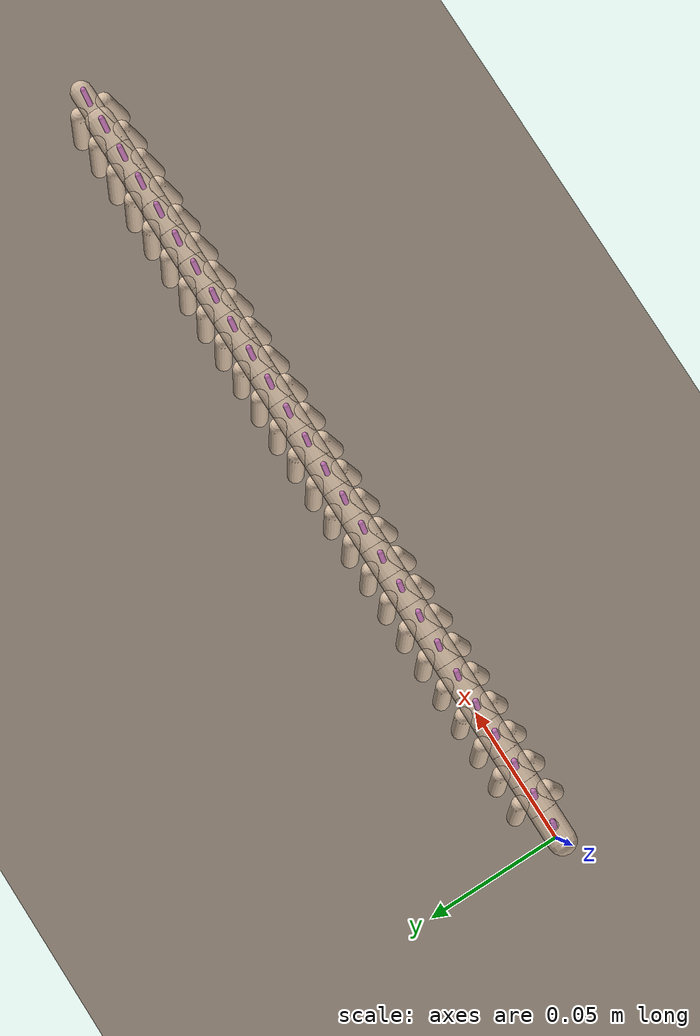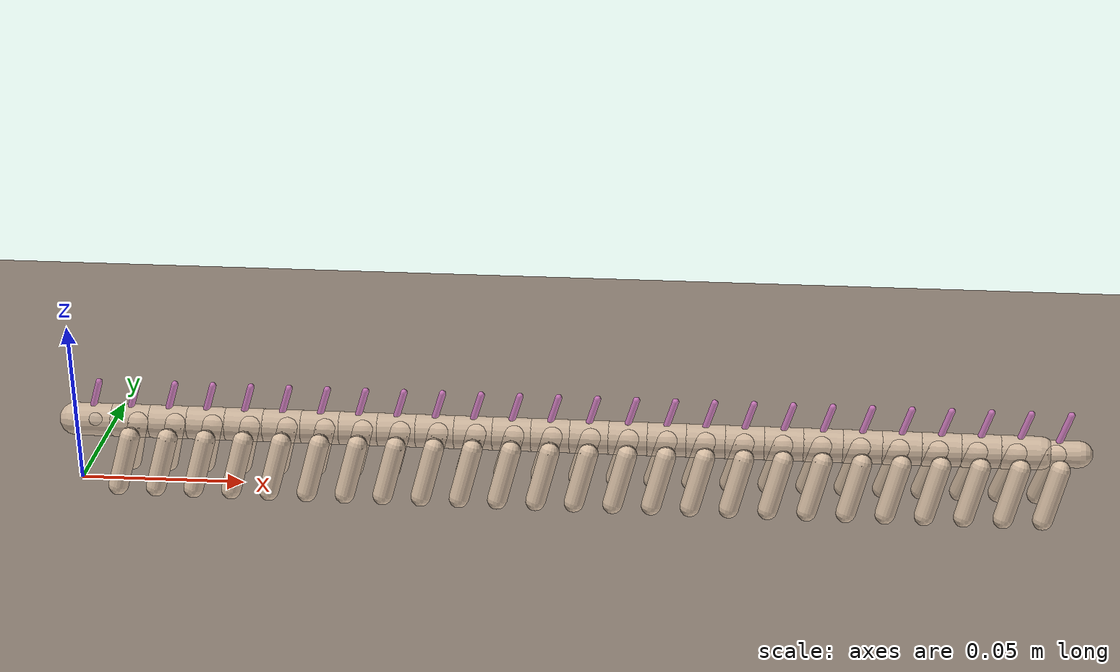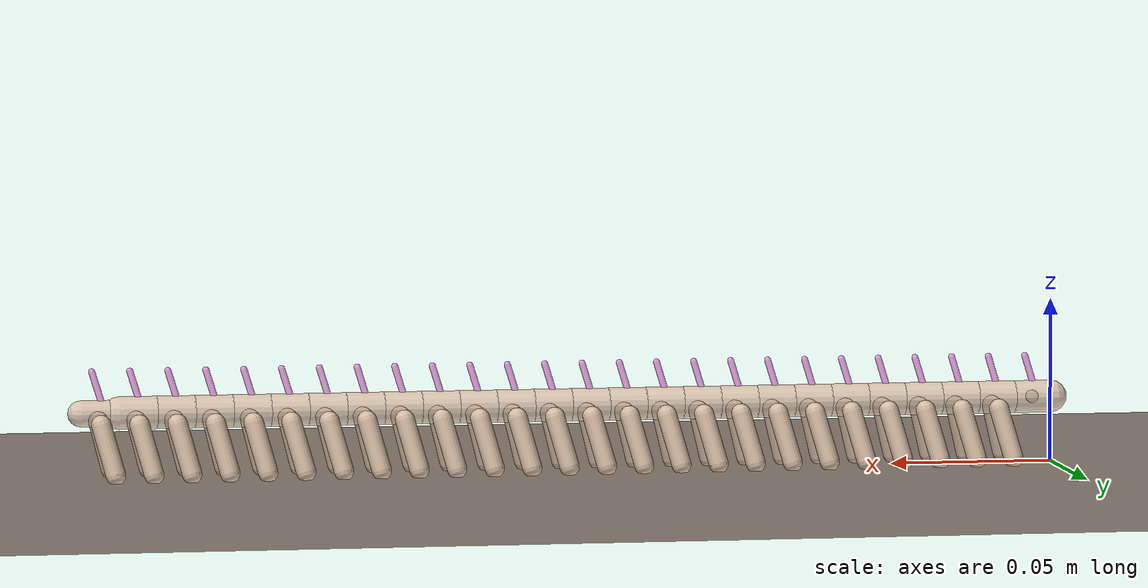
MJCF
<mujoco model="hallu_c">
  <compiler angle="radian" autolimits="true"/>

  <option timestep="0.002" gravity="0 0 -9.81" integrator="implicit">
    <flag contact="enable"/>
  </option>

  <size nconmax="800" njmax="1600"/>

  <default>
    <default class="body_joint">
      <joint type="hinge" damping="0.015" stiffness="0.08" limited="true"
             range="-0.15 0.15"/>
    </default>
    <!-- lobopod legs: pitch axis (0 1 0) so legs swing fore/aft -->
    <default class="leg_joint">
      <joint type="hinge" axis="0 1 0" damping="0.005" stiffness="0.02"
             limited="true" range="-0.3 0.8"/>
    </default>
    <default class="leg_geom">
      <geom type="capsule" size="0.003" rgba="0.85 0.75 0.65 0.9"
            density="1100" friction="1.5 0.01 0.01" condim="4"
            contype="1" conaffinity="1"/>
    </default>
    <default class="body_geom">
      <geom type="capsule" rgba="0.9 0.8 0.7 0.85"
            density="1100" friction="0.8 0.01 0.01" condim="3"
            contype="1" conaffinity="1"/>
    </default>
    <default class="spine_geom">
      <geom type="capsule" size="0.001 0.008" rgba="0.95 0.5 0.9 0.7"
            contype="0" conaffinity="0"/>
    </default>
    <default class="pneumatic">
      <general gainprm="0.009" biasprm="0 -0.009 0" dyntype="filter" dynprm="0.06"/>
    </default>
  </default>

  <asset>
    <texture name="ground" type="2d" builtin="checker" width="512" height="512"
             rgb1="0.6 0.55 0.5" rgb2="0.5 0.45 0.4"/>
    <material name="ground_mat" texture="ground" texrepeat="8 8"/>
  </asset>

  <worldbody>
    <geom name="floor" type="plane" size="2 2 0.01" material="ground_mat"
          contype="1" conaffinity="1" friction="1.0 0.005 0.001"/>

    <!-- HALLU-C: head + 25 leg-bearing segments, ~300mm total, 11.5mm per segment -->
    <body name="head" pos="0 0 0.020">
      <freejoint name="root"/>
      <geom class="body_geom" fromto="0 0 0 0.0115 0 0" size="0.005"/>
      <geom class="spine_geom" pos="0.00575 0 0.005" euler="0 0.3 0"/>
      <site name="imu" pos="0.00575 0 0" size="0.002"/>

      <!-- seg1 (zone 1) -->
      <body name="seg1" pos="0.0115 0 0">
        <joint class="body_joint" name="spine_1" axis="0 1 0"/>
        <joint class="body_joint" name="yaw_1" axis="0 0 1"/>
        <geom class="body_geom" fromto="0 0 0 0.0115 0 0" size="0.005"/>
        <geom class="spine_geom" pos="0.00575 0 0.005" euler="0 0.3 0"/>
        <body name="leg_1L" pos="0.00575 0.005 -0.003">
          <joint class="leg_joint" name="leg_1L_j"/>
          <geom class="leg_geom" fromto="0 0 0 -0.004 0.003 -0.015"/>
        </body>
        <body name="leg_1R" pos="0.00575 -0.005 -0.003">
          <joint class="leg_joint" name="leg_1R_j"/>
          <geom class="leg_geom" fromto="0 0 0 -0.004 -0.003 -0.015"/>
        </body>

        <!-- seg2 (zone 1) -->
        <body name="seg2" pos="0.0115 0 0">
          <joint class="body_joint" name="spine_2" axis="0 1 0"/>
          <joint class="body_joint" name="yaw_2" axis="0 0 1"/>
          <geom class="body_geom" fromto="0 0 0 0.0115 0 0" size="0.005"/>
          <geom class="spine_geom" pos="0.00575 0 0.005" euler="0 0.3 0"/>
          <body name="leg_2L" pos="0.00575 0.005 -0.003">
            <joint class="leg_joint" name="leg_2L_j"/>
            <geom class="leg_geom" fromto="0 0 0 -0.004 0.003 -0.015"/>
          </body>
          <body name="leg_2R" pos="0.00575 -0.005 -0.003">
            <joint class="leg_joint" name="leg_2R_j"/>
            <geom class="leg_geom" fromto="0 0 0 -0.004 -0.003 -0.015"/>
          </body>

          <!-- seg3 (zone 1) -->
          <body name="seg3" pos="0.0115 0 0">
            <joint class="body_joint" name="spine_3" axis="0 1 0"/>
            <joint class="body_joint" name="yaw_3" axis="0 0 1"/>
            <geom class="body_geom" fromto="0 0 0 0.0115 0 0" size="0.005"/>
            <geom class="spine_geom" pos="0.00575 0 0.005" euler="0 0.3 0"/>
            <body name="leg_3L" pos="0.00575 0.005 -0.003">
              <joint class="leg_joint" name="leg_3L_j"/>
              <geom class="leg_geom" fromto="0 0 0 -0.004 0.003 -0.015"/>
            </body>
            <body name="leg_3R" pos="0.00575 -0.005 -0.003">
              <joint class="leg_joint" name="leg_3R_j"/>
              <geom class="leg_geom" fromto="0 0 0 -0.004 -0.003 -0.015"/>
            </body>

            <!-- seg4 (zone 2) -->
            <body name="seg4" pos="0.0115 0 0">
              <joint class="body_joint" name="spine_4" axis="0 1 0"/>
              <joint class="body_joint" name="yaw_4" axis="0 0 1"/>
              <geom class="body_geom" fromto="0 0 0 0.0115 0 0" size="0.005"/>
              <geom class="spine_geom" pos="0.00575 0 0.005" euler="0 0.3 0"/>
              <body name="leg_4L" pos="0.00575 0.005 -0.003">
                <joint class="leg_joint" name="leg_4L_j"/>
                <geom class="leg_geom" fromto="0 0 0 -0.004 0.003 -0.015"/>
              </body>
              <body name="leg_4R" pos="0.00575 -0.005 -0.003">
                <joint class="leg_joint" name="leg_4R_j"/>
                <geom class="leg_geom" fromto="0 0 0 -0.004 -0.003 -0.015"/>
              </body>

              <!-- seg5 (zone 2) -->
              <body name="seg5" pos="0.0115 0 0">
                <joint class="body_joint" name="spine_5" axis="0 1 0"/>
                <joint class="body_joint" name="yaw_5" axis="0 0 1"/>
                <geom class="body_geom" fromto="0 0 0 0.0115 0 0" size="0.005"/>
                <geom class="spine_geom" pos="0.00575 0 0.005" euler="0 0.3 0"/>
                <body name="leg_5L" pos="0.00575 0.005 -0.003">
                  <joint class="leg_joint" name="leg_5L_j"/>
                  <geom class="leg_geom" fromto="0 0 0 -0.004 0.003 -0.015"/>
                </body>
                <body name="leg_5R" pos="0.00575 -0.005 -0.003">
                  <joint class="leg_joint" name="leg_5R_j"/>
                  <geom class="leg_geom" fromto="0 0 0 -0.004 -0.003 -0.015"/>
                </body>

                <!-- seg6 (zone 2) -->
                <body name="seg6" pos="0.0115 0 0">
                  <joint class="body_joint" name="spine_6" axis="0 1 0"/>
                  <joint class="body_joint" name="yaw_6" axis="0 0 1"/>
                  <geom class="body_geom" fromto="0 0 0 0.0115 0 0" size="0.005"/>
                  <geom class="spine_geom" pos="0.00575 0 0.005" euler="0 0.3 0"/>
                  <body name="leg_6L" pos="0.00575 0.005 -0.003">
                    <joint class="leg_joint" name="leg_6L_j"/>
                    <geom class="leg_geom" fromto="0 0 0 -0.004 0.003 -0.015"/>
                  </body>
                  <body name="leg_6R" pos="0.00575 -0.005 -0.003">
                    <joint class="leg_joint" name="leg_6R_j"/>
                    <geom class="leg_geom" fromto="0 0 0 -0.004 -0.003 -0.015"/>
                  </body>

                  <!-- seg7 (zone 3) -->
                  <body name="seg7" pos="0.0115 0 0">
                    <joint class="body_joint" name="spine_7" axis="0 1 0"/>
                    <joint class="body_joint" name="yaw_7" axis="0 0 1"/>
                    <geom class="body_geom" fromto="0 0 0 0.0115 0 0" size="0.005"/>
                    <geom class="spine_geom" pos="0.00575 0 0.005" euler="0 0.3 0"/>
                    <body name="leg_7L" pos="0.00575 0.005 -0.003">
                      <joint class="leg_joint" name="leg_7L_j"/>
                      <geom class="leg_geom" fromto="0 0 0 -0.004 0.003 -0.015"/>
                    </body>
                    <body name="leg_7R" pos="0.00575 -0.005 -0.003">
                      <joint class="leg_joint" name="leg_7R_j"/>
                      <geom class="leg_geom" fromto="0 0 0 -0.004 -0.003 -0.015"/>
                    </body>

                    <!-- seg8 (zone 3) -->
                    <body name="seg8" pos="0.0115 0 0">
                      <joint class="body_joint" name="spine_8" axis="0 1 0"/>
                      <joint class="body_joint" name="yaw_8" axis="0 0 1"/>
                      <geom class="body_geom" fromto="0 0 0 0.0115 0 0" size="0.005"/>
                      <geom class="spine_geom" pos="0.00575 0 0.005" euler="0 0.3 0"/>
                      <body name="leg_8L" pos="0.00575 0.005 -0.003">
                        <joint class="leg_joint" name="leg_8L_j"/>
                        <geom class="leg_geom" fromto="0 0 0 -0.004 0.003 -0.015"/>
                      </body>
                      <body name="leg_8R" pos="0.00575 -0.005 -0.003">
                        <joint class="leg_joint" name="leg_8R_j"/>
                        <geom class="leg_geom" fromto="0 0 0 -0.004 -0.003 -0.015"/>
                      </body>

                      <!-- seg9 (zone 3) -->
                      <body name="seg9" pos="0.0115 0 0">
                        <joint class="body_joint" name="spine_9" axis="0 1 0"/>
                        <joint class="body_joint" name="yaw_9" axis="0 0 1"/>
                        <geom class="body_geom" fromto="0 0 0 0.0115 0 0" size="0.005"/>
                        <geom class="spine_geom" pos="0.00575 0 0.005" euler="0 0.3 0"/>
                        <body name="leg_9L" pos="0.00575 0.005 -0.003">
                          <joint class="leg_joint" name="leg_9L_j"/>
                          <geom class="leg_geom" fromto="0 0 0 -0.004 0.003 -0.015"/>
                        </body>
                        <body name="leg_9R" pos="0.00575 -0.005 -0.003">
                          <joint class="leg_joint" name="leg_9R_j"/>
                          <geom class="leg_geom" fromto="0 0 0 -0.004 -0.003 -0.015"/>
                        </body>

                        <!-- seg10 (zone 4) -->
                        <body name="seg10" pos="0.0115 0 0">
                          <joint class="body_joint" name="spine_10" axis="0 1 0"/>
                          <joint class="body_joint" name="yaw_10" axis="0 0 1"/>
                          <geom class="body_geom" fromto="0 0 0 0.0115 0 0" size="0.005"/>
                          <geom class="spine_geom" pos="0.00575 0 0.005" euler="0 0.3 0"/>
                          <body name="leg_10L" pos="0.00575 0.005 -0.003">
                            <joint class="leg_joint" name="leg_10L_j"/>
                            <geom class="leg_geom" fromto="0 0 0 -0.004 0.003 -0.015"/>
                          </body>
                          <body name="leg_10R" pos="0.00575 -0.005 -0.003">
                            <joint class="leg_joint" name="leg_10R_j"/>
                            <geom class="leg_geom" fromto="0 0 0 -0.004 -0.003 -0.015"/>
                          </body>

                          <!-- seg11 (zone 4) -->
                          <body name="seg11" pos="0.0115 0 0">
                            <joint class="body_joint" name="spine_11" axis="0 1 0"/>
                            <joint class="body_joint" name="yaw_11" axis="0 0 1"/>
                            <geom class="body_geom" fromto="0 0 0 0.0115 0 0" size="0.005"/>
                            <geom class="spine_geom" pos="0.00575 0 0.005" euler="0 0.3 0"/>
                            <body name="leg_11L" pos="0.00575 0.005 -0.003">
                              <joint class="leg_joint" name="leg_11L_j"/>
                              <geom class="leg_geom" fromto="0 0 0 -0.004 0.003 -0.015"/>
                            </body>
                            <body name="leg_11R" pos="0.00575 -0.005 -0.003">
                              <joint class="leg_joint" name="leg_11R_j"/>
                              <geom class="leg_geom" fromto="0 0 0 -0.004 -0.003 -0.015"/>
                            </body>

                            <!-- seg12 (zone 4) -->
                            <body name="seg12" pos="0.0115 0 0">
                              <joint class="body_joint" name="spine_12" axis="0 1 0"/>
                              <joint class="body_joint" name="yaw_12" axis="0 0 1"/>
                              <geom class="body_geom" fromto="0 0 0 0.0115 0 0" size="0.005"/>
                              <geom class="spine_geom" pos="0.00575 0 0.005" euler="0 0.3 0"/>
                              <body name="leg_12L" pos="0.00575 0.005 -0.003">
                                <joint class="leg_joint" name="leg_12L_j"/>
                                <geom class="leg_geom" fromto="0 0 0 -0.004 0.003 -0.015"/>
                              </body>
                              <body name="leg_12R" pos="0.00575 -0.005 -0.003">
                                <joint class="leg_joint" name="leg_12R_j"/>
                                <geom class="leg_geom" fromto="0 0 0 -0.004 -0.003 -0.015"/>
                              </body>

                              <!-- seg13 (zone 5) -->
                              <body name="seg13" pos="0.0115 0 0">
                                <joint class="body_joint" name="spine_13" axis="0 1 0"/>
                                <joint class="body_joint" name="yaw_13" axis="0 0 1"/>
                                <geom class="body_geom" fromto="0 0 0 0.0115 0 0" size="0.005"/>
                                <geom class="spine_geom" pos="0.00575 0 0.005" euler="0 0.3 0"/>
                                <body name="leg_13L" pos="0.00575 0.005 -0.003">
                                  <joint class="leg_joint" name="leg_13L_j"/>
                                  <geom class="leg_geom" fromto="0 0 0 -0.004 0.003 -0.015"/>
                                </body>
                                <body name="leg_13R" pos="0.00575 -0.005 -0.003">
                                  <joint class="leg_joint" name="leg_13R_j"/>
                                  <geom class="leg_geom" fromto="0 0 0 -0.004 -0.003 -0.015"/>
                                </body>

                                <!-- seg14 (zone 5) -->
                                <body name="seg14" pos="0.0115 0 0">
                                  <joint class="body_joint" name="spine_14" axis="0 1 0"/>
                                  <joint class="body_joint" name="yaw_14" axis="0 0 1"/>
                                  <geom class="body_geom" fromto="0 0 0 0.0115 0 0" size="0.005"/>
                                  <geom class="spine_geom" pos="0.00575 0 0.005" euler="0 0.3 0"/>
                                  <body name="leg_14L" pos="0.00575 0.005 -0.003">
                                    <joint class="leg_joint" name="leg_14L_j"/>
                                    <geom class="leg_geom" fromto="0 0 0 -0.004 0.003 -0.015"/>
                                  </body>
                                  <body name="leg_14R" pos="0.00575 -0.005 -0.003">
                                    <joint class="leg_joint" name="leg_14R_j"/>
                                    <geom class="leg_geom" fromto="0 0 0 -0.004 -0.003 -0.015"/>
                                  </body>

                                  <!-- seg15 (zone 5) -->
                                  <body name="seg15" pos="0.0115 0 0">
                                    <joint class="body_joint" name="spine_15" axis="0 1 0"/>
                                    <joint class="body_joint" name="yaw_15" axis="0 0 1"/>
                                    <geom class="body_geom" fromto="0 0 0 0.0115 0 0" size="0.005"/>
                                    <geom class="spine_geom" pos="0.00575 0 0.005" euler="0 0.3 0"/>
                                    <body name="leg_15L" pos="0.00575 0.005 -0.003">
                                      <joint class="leg_joint" name="leg_15L_j"/>
                                      <geom class="leg_geom" fromto="0 0 0 -0.004 0.003 -0.015"/>
                                    </body>
                                    <body name="leg_15R" pos="0.00575 -0.005 -0.003">
                                      <joint class="leg_joint" name="leg_15R_j"/>
                                      <geom class="leg_geom" fromto="0 0 0 -0.004 -0.003 -0.015"/>
                                    </body>

                                    <!-- seg16 (zone 6) -->
                                    <body name="seg16" pos="0.0115 0 0">
                                      <joint class="body_joint" name="spine_16" axis="0 1 0"/>
                                      <joint class="body_joint" name="yaw_16" axis="0 0 1"/>
                                      <geom class="body_geom" fromto="0 0 0 0.0115 0 0" size="0.005"/>
                                      <geom class="spine_geom" pos="0.00575 0 0.005" euler="0 0.3 0"/>
                                      <body name="leg_16L" pos="0.00575 0.005 -0.003">
                                        <joint class="leg_joint" name="leg_16L_j"/>
                                        <geom class="leg_geom" fromto="0 0 0 -0.004 0.003 -0.015"/>
                                      </body>
                                      <body name="leg_16R" pos="0.00575 -0.005 -0.003">
                                        <joint class="leg_joint" name="leg_16R_j"/>
                                        <geom class="leg_geom" fromto="0 0 0 -0.004 -0.003 -0.015"/>
                                      </body>

                                      <!-- seg17 (zone 6) -->
                                      <body name="seg17" pos="0.0115 0 0">
                                        <joint class="body_joint" name="spine_17" axis="0 1 0"/>
                                        <joint class="body_joint" name="yaw_17" axis="0 0 1"/>
                                        <geom class="body_geom" fromto="0 0 0 0.0115 0 0" size="0.005"/>
                                        <geom class="spine_geom" pos="0.00575 0 0.005" euler="0 0.3 0"/>
                                        <body name="leg_17L" pos="0.00575 0.005 -0.003">
                                          <joint class="leg_joint" name="leg_17L_j"/>
                                          <geom class="leg_geom" fromto="0 0 0 -0.004 0.003 -0.015"/>
                                        </body>
                                        <body name="leg_17R" pos="0.00575 -0.005 -0.003">
                                          <joint class="leg_joint" name="leg_17R_j"/>
                                          <geom class="leg_geom" fromto="0 0 0 -0.004 -0.003 -0.015"/>
                                        </body>

                                        <!-- seg18 (zone 6) -->
                                        <body name="seg18" pos="0.0115 0 0">
                                          <joint class="body_joint" name="spine_18" axis="0 1 0"/>
                                          <joint class="body_joint" name="yaw_18" axis="0 0 1"/>
                                          <geom class="body_geom" fromto="0 0 0 0.0115 0 0" size="0.005"/>
                                          <geom class="spine_geom" pos="0.00575 0 0.005" euler="0 0.3 0"/>
                                          <body name="leg_18L" pos="0.00575 0.005 -0.003">
                                            <joint class="leg_joint" name="leg_18L_j"/>
                                            <geom class="leg_geom" fromto="0 0 0 -0.004 0.003 -0.015"/>
                                          </body>
                                          <body name="leg_18R" pos="0.00575 -0.005 -0.003">
                                            <joint class="leg_joint" name="leg_18R_j"/>
                                            <geom class="leg_geom" fromto="0 0 0 -0.004 -0.003 -0.015"/>
                                          </body>

                                          <!-- seg19 (zone 7) -->
                                          <body name="seg19" pos="0.0115 0 0">
                                            <joint class="body_joint" name="spine_19" axis="0 1 0"/>
                                            <joint class="body_joint" name="yaw_19" axis="0 0 1"/>
                                            <geom class="body_geom" fromto="0 0 0 0.0115 0 0" size="0.005"/>
                                            <geom class="spine_geom" pos="0.00575 0 0.005" euler="0 0.3 0"/>
                                            <body name="leg_19L" pos="0.00575 0.005 -0.003">
                                              <joint class="leg_joint" name="leg_19L_j"/>
                                              <geom class="leg_geom" fromto="0 0 0 -0.004 0.003 -0.015"/>
                                            </body>
                                            <body name="leg_19R" pos="0.00575 -0.005 -0.003">
                                              <joint class="leg_joint" name="leg_19R_j"/>
                                              <geom class="leg_geom" fromto="0 0 0 -0.004 -0.003 -0.015"/>
                                            </body>

                                            <!-- seg20 (zone 7) -->
                                            <body name="seg20" pos="0.0115 0 0">
                                              <joint class="body_joint" name="spine_20" axis="0 1 0"/>
                                              <joint class="body_joint" name="yaw_20" axis="0 0 1"/>
                                              <geom class="body_geom" fromto="0 0 0 0.0115 0 0" size="0.005"/>
                                              <geom class="spine_geom" pos="0.00575 0 0.005" euler="0 0.3 0"/>
                                              <body name="leg_20L" pos="0.00575 0.005 -0.003">
                                                <joint class="leg_joint" name="leg_20L_j"/>
                                                <geom class="leg_geom" fromto="0 0 0 -0.004 0.003 -0.015"/>
                                              </body>
                                              <body name="leg_20R" pos="0.00575 -0.005 -0.003">
                                                <joint class="leg_joint" name="leg_20R_j"/>
                                                <geom class="leg_geom" fromto="0 0 0 -0.004 -0.003 -0.015"/>
                                              </body>

                                              <!-- seg21 (zone 7) -->
                                              <body name="seg21" pos="0.0115 0 0">
                                                <joint class="body_joint" name="spine_21" axis="0 1 0"/>
                                                <joint class="body_joint" name="yaw_21" axis="0 0 1"/>
                                                <geom class="body_geom" fromto="0 0 0 0.0115 0 0" size="0.005"/>
                                                <geom class="spine_geom" pos="0.00575 0 0.005" euler="0 0.3 0"/>
                                                <body name="leg_21L" pos="0.00575 0.005 -0.003">
                                                  <joint class="leg_joint" name="leg_21L_j"/>
                                                  <geom class="leg_geom" fromto="0 0 0 -0.004 0.003 -0.015"/>
                                                </body>
                                                <body name="leg_21R" pos="0.00575 -0.005 -0.003">
                                                  <joint class="leg_joint" name="leg_21R_j"/>
                                                  <geom class="leg_geom" fromto="0 0 0 -0.004 -0.003 -0.015"/>
                                                </body>

                                                <!-- seg22 (zone 8) -->
                                                <body name="seg22" pos="0.0115 0 0">
                                                  <joint class="body_joint" name="spine_22" axis="0 1 0"/>
                                                  <joint class="body_joint" name="yaw_22" axis="0 0 1"/>
                                                  <geom class="body_geom" fromto="0 0 0 0.0115 0 0" size="0.005"/>
                                                  <geom class="spine_geom" pos="0.00575 0 0.005" euler="0 0.3 0"/>
                                                  <body name="leg_22L" pos="0.00575 0.005 -0.003">
                                                    <joint class="leg_joint" name="leg_22L_j"/>
                                                    <geom class="leg_geom" fromto="0 0 0 -0.004 0.003 -0.015"/>
                                                  </body>
                                                  <body name="leg_22R" pos="0.00575 -0.005 -0.003">
                                                    <joint class="leg_joint" name="leg_22R_j"/>
                                                    <geom class="leg_geom" fromto="0 0 0 -0.004 -0.003 -0.015"/>
                                                  </body>

                                                  <!-- seg23 (zone 8) -->
                                                  <body name="seg23" pos="0.0115 0 0">
                                                    <joint class="body_joint" name="spine_23" axis="0 1 0"/>
                                                    <joint class="body_joint" name="yaw_23" axis="0 0 1"/>
                                                    <geom class="body_geom" fromto="0 0 0 0.0115 0 0" size="0.005"/>
                                                    <geom class="spine_geom" pos="0.00575 0 0.005" euler="0 0.3 0"/>
                                                    <body name="leg_23L" pos="0.00575 0.005 -0.003">
                                                      <joint class="leg_joint" name="leg_23L_j"/>
                                                      <geom class="leg_geom" fromto="0 0 0 -0.004 0.003 -0.015"/>
                                                    </body>
                                                    <body name="leg_23R" pos="0.00575 -0.005 -0.003">
                                                      <joint class="leg_joint" name="leg_23R_j"/>
                                                      <geom class="leg_geom" fromto="0 0 0 -0.004 -0.003 -0.015"/>
                                                    </body>

                                                    <!-- seg24 (zone 8) -->
                                                    <body name="seg24" pos="0.0115 0 0">
                                                      <joint class="body_joint" name="spine_24" axis="0 1 0"/>
                                                      <joint class="body_joint" name="yaw_24" axis="0 0 1"/>
                                                      <geom class="body_geom" fromto="0 0 0 0.0115 0 0" size="0.005"/>
                                                      <geom class="spine_geom" pos="0.00575 0 0.005" euler="0 0.3 0"/>
                                                      <body name="leg_24L" pos="0.00575 0.005 -0.003">
                                                        <joint class="leg_joint" name="leg_24L_j"/>
                                                        <geom class="leg_geom" fromto="0 0 0 -0.004 0.003 -0.015"/>
                                                      </body>
                                                      <body name="leg_24R" pos="0.00575 -0.005 -0.003">
                                                        <joint class="leg_joint" name="leg_24R_j"/>
                                                        <geom class="leg_geom" fromto="0 0 0 -0.004 -0.003 -0.015"/>
                                                      </body>

                                                      <!-- seg25 / tail (zone 8) -->
                                                      <body name="seg25" pos="0.0115 0 0">
                                                        <joint class="body_joint" name="spine_25" axis="0 1 0"/>
                                                        <joint class="body_joint" name="yaw_25" axis="0 0 1"/>
                                                        <geom class="body_geom" fromto="0 0 0 0.0115 0 0" size="0.004"/>
                                                        <geom class="spine_geom" pos="0.00575 0 0.005" euler="0 0.3 0"/>
                                                        <body name="leg_25L" pos="0.00575 0.005 -0.003">
                                                          <joint class="leg_joint" name="leg_25L_j"/>
                                                          <geom class="leg_geom" fromto="0 0 0 -0.004 0.003 -0.015"/>
                                                        </body>
                                                        <body name="leg_25R" pos="0.00575 -0.005 -0.003">
                                                          <joint class="leg_joint" name="leg_25R_j"/>
                                                          <geom class="leg_geom" fromto="0 0 0 -0.004 -0.003 -0.015"/>
                                                        </body>
                                                      </body>
                                                    </body>
                                                  </body>
                                                </body>
                                              </body>
                                            </body>
                                          </body>
                                        </body>
                                      </body>
                                    </body>
                                  </body>
                                </body>
                              </body>
                            </body>
                          </body>
                        </body>
                      </body>
                    </body>
                  </body>
                </body>
              </body>
            </body>
          </body>
        </body>
      </body>
    </body>
  </worldbody>

  <actuator>
    <!-- Zone 1: legs 1-3 -->
    <general class="pneumatic" name="valve_1a"  joint="leg_1L_j"  ctrlrange="0 1"/>
    <general class="pneumatic" name="valve_1aR" joint="leg_1R_j"  ctrlrange="0 1"/>
    <general class="pneumatic" name="valve_1b"  joint="leg_2L_j"  ctrlrange="0 1"/>
    <general class="pneumatic" name="valve_1bR" joint="leg_2R_j"  ctrlrange="0 1"/>
    <general class="pneumatic" name="valve_1c"  joint="leg_3L_j"  ctrlrange="0 1"/>
    <general class="pneumatic" name="valve_1cR" joint="leg_3R_j"  ctrlrange="0 1"/>
    <!-- Zone 2: legs 4-6 -->
    <general class="pneumatic" name="valve_2a"  joint="leg_4L_j"  ctrlrange="0 1"/>
    <general class="pneumatic" name="valve_2aR" joint="leg_4R_j"  ctrlrange="0 1"/>
    <general class="pneumatic" name="valve_2b"  joint="leg_5L_j"  ctrlrange="0 1"/>
    <general class="pneumatic" name="valve_2bR" joint="leg_5R_j"  ctrlrange="0 1"/>
    <general class="pneumatic" name="valve_2c"  joint="leg_6L_j"  ctrlrange="0 1"/>
    <general class="pneumatic" name="valve_2cR" joint="leg_6R_j"  ctrlrange="0 1"/>
    <!-- Zone 3: legs 7-9 -->
    <general class="pneumatic" name="valve_3a"  joint="leg_7L_j"  ctrlrange="0 1"/>
    <general class="pneumatic" name="valve_3aR" joint="leg_7R_j"  ctrlrange="0 1"/>
    <general class="pneumatic" name="valve_3b"  joint="leg_8L_j"  ctrlrange="0 1"/>
    <general class="pneumatic" name="valve_3bR" joint="leg_8R_j"  ctrlrange="0 1"/>
    <general class="pneumatic" name="valve_3c"  joint="leg_9L_j"  ctrlrange="0 1"/>
    <general class="pneumatic" name="valve_3cR" joint="leg_9R_j"  ctrlrange="0 1"/>
    <!-- Zone 4: legs 10-12 -->
    <general class="pneumatic" name="valve_4a"  joint="leg_10L_j" ctrlrange="0 1"/>
    <general class="pneumatic" name="valve_4aR" joint="leg_10R_j" ctrlrange="0 1"/>
    <general class="pneumatic" name="valve_4b"  joint="leg_11L_j" ctrlrange="0 1"/>
    <general class="pneumatic" name="valve_4bR" joint="leg_11R_j" ctrlrange="0 1"/>
    <general class="pneumatic" name="valve_4c"  joint="leg_12L_j" ctrlrange="0 1"/>
    <general class="pneumatic" name="valve_4cR" joint="leg_12R_j" ctrlrange="0 1"/>
    <!-- Zone 5: legs 13-15 -->
    <general class="pneumatic" name="valve_5a"  joint="leg_13L_j" ctrlrange="0 1"/>
    <general class="pneumatic" name="valve_5aR" joint="leg_13R_j" ctrlrange="0 1"/>
    <general class="pneumatic" name="valve_5b"  joint="leg_14L_j" ctrlrange="0 1"/>
    <general class="pneumatic" name="valve_5bR" joint="leg_14R_j" ctrlrange="0 1"/>
    <general class="pneumatic" name="valve_5c"  joint="leg_15L_j" ctrlrange="0 1"/>
    <general class="pneumatic" name="valve_5cR" joint="leg_15R_j" ctrlrange="0 1"/>
    <!-- Zone 6: legs 16-18 -->
    <general class="pneumatic" name="valve_6a"  joint="leg_16L_j" ctrlrange="0 1"/>
    <general class="pneumatic" name="valve_6aR" joint="leg_16R_j" ctrlrange="0 1"/>
    <general class="pneumatic" name="valve_6b"  joint="leg_17L_j" ctrlrange="0 1"/>
    <general class="pneumatic" name="valve_6bR" joint="leg_17R_j" ctrlrange="0 1"/>
    <general class="pneumatic" name="valve_6c"  joint="leg_18L_j" ctrlrange="0 1"/>
    <general class="pneumatic" name="valve_6cR" joint="leg_18R_j" ctrlrange="0 1"/>
    <!-- Zone 7: legs 19-21 -->
    <general class="pneumatic" name="valve_7a"  joint="leg_19L_j" ctrlrange="0 1"/>
    <general class="pneumatic" name="valve_7aR" joint="leg_19R_j" ctrlrange="0 1"/>
    <general class="pneumatic" name="valve_7b"  joint="leg_20L_j" ctrlrange="0 1"/>
    <general class="pneumatic" name="valve_7bR" joint="leg_20R_j" ctrlrange="0 1"/>
    <general class="pneumatic" name="valve_7c"  joint="leg_21L_j" ctrlrange="0 1"/>
    <general class="pneumatic" name="valve_7cR" joint="leg_21R_j" ctrlrange="0 1"/>
    <!-- Zone 8: legs 22-25 (4 legs) -->
    <general class="pneumatic" name="valve_8a"  joint="leg_22L_j" ctrlrange="0 1"/>
    <general class="pneumatic" name="valve_8aR" joint="leg_22R_j" ctrlrange="0 1"/>
    <general class="pneumatic" name="valve_8b"  joint="leg_23L_j" ctrlrange="0 1"/>
    <general class="pneumatic" name="valve_8bR" joint="leg_23R_j" ctrlrange="0 1"/>
    <general class="pneumatic" name="valve_8c"  joint="leg_24L_j" ctrlrange="0 1"/>
    <general class="pneumatic" name="valve_8cR" joint="leg_24R_j" ctrlrange="0 1"/>
    <general class="pneumatic" name="valve_8d"  joint="leg_25L_j" ctrlrange="0 1"/>
    <general class="pneumatic" name="valve_8dR" joint="leg_25R_j" ctrlrange="0 1"/>
  </actuator>

  <sensor>
    <framepos name="head_pos" objtype="site" objname="imu"/>
    <framequat name="head_quat" objtype="site" objname="imu"/>
    <framelinvel name="head_vel" objtype="site" objname="imu"/>
    <gyro name="gyro" site="imu"/>
    <accelerometer name="accel" site="imu"/>
  </sensor>
</mujoco>
